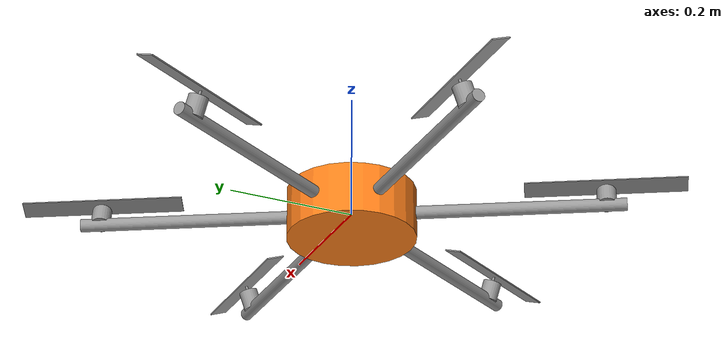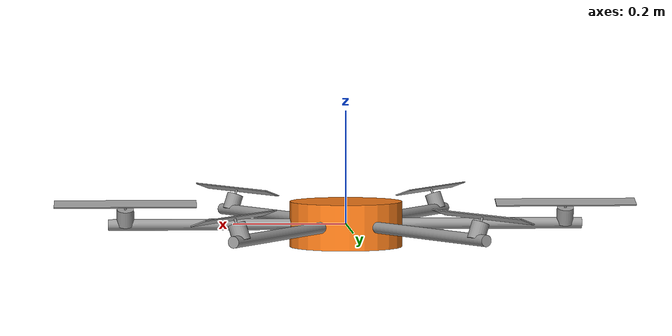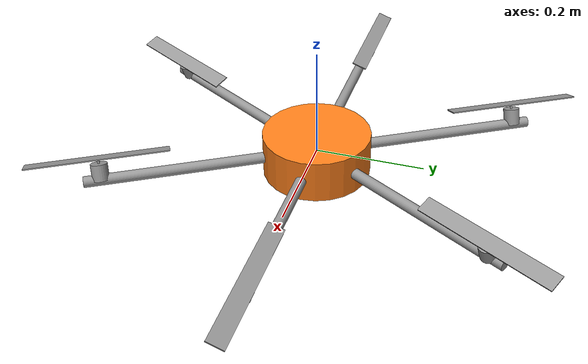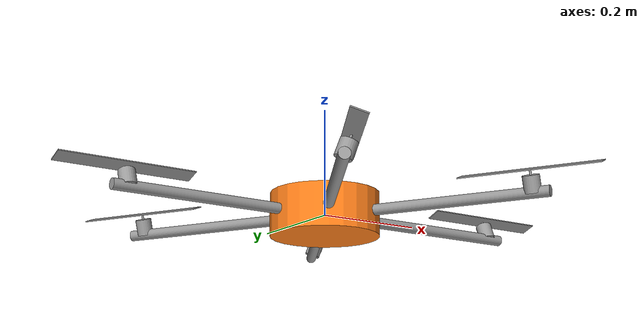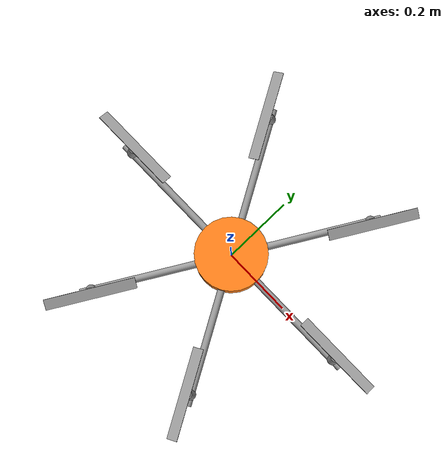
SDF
<?xml version="1.0" ?>
<sdf version="1.5">
<model name="mrsim-tilthex">
    <link name="base">
        <inertial>
            <mass>2.5</mass>
            <inertia>
                <ixx>0.0115</ixx><ixy>0</ixy><ixz>0</ixz>
                <iyy>0.0115</iyy><iyz>0</iyz>
                <izz>0.0194</izz>
            </inertia>
        </inertial>

        <collision name="body">
            <geometry>
                <cylinder><radius>0.1</radius><length>0.08</length></cylinder>
            </geometry>
        </collision>

        <!-- three spheres to make contact stable -->
        <collision name="land_1">
            <pose>0.067 0 0 0 0 0</pose>
            <geometry>
                <sphere><radius>0.04</radius></sphere>
            </geometry>
        </collision>
        <collision name="land_2">
            <pose>-0.06 0.03 0 0 0 0</pose>
            <geometry>
                <sphere><radius>0.04</radius></sphere>
            </geometry>
        </collision>
        <collision name="land_3">
            <pose>-0.05 -0.03 0 0 0 0</pose>
            <geometry>
                <sphere><radius>0.04</radius></sphere>
            </geometry>
        </collision>

        <!-- contact for the arms -->
        <collision name="arm_1">
            <pose>0.21 0 0 0 1.5708 0</pose>
            <geometry>
                <cylinder><radius>0.01</radius><length>0.42</length></cylinder>
            </geometry>
        </collision>
        <collision name="arm_2">
            <pose>0.1050 0.1819 0 0 1.5708 1.0472</pose>
            <geometry>
                <cylinder><radius>0.01</radius><length>0.42</length></cylinder>
            </geometry>
        </collision>
        <collision name="arm_3">
            <pose>-0.1050 0.1819 0 0 1.5708 -1.0472</pose>
            <geometry>
                <cylinder><radius>0.01</radius><length>0.42</length></cylinder>
            </geometry>
        </collision>
        <collision name="arm_4">
            <pose>-0.21 0 0 0 1.5708 0</pose>
            <geometry>
                <cylinder><radius>0.01</radius><length>0.42</length></cylinder>
            </geometry>
        </collision>
        <collision name="arm_5">
            <pose>-0.1050 -0.1819 0 0 1.5708 1.0472</pose>
            <geometry>
                <cylinder><radius>0.01</radius><length>0.42</length></cylinder>
            </geometry>
        </collision>
        <collision name="arm_6">
            <pose>0.1050 -0.1819 0 0 1.5708 -1.0472</pose>
            <geometry>
                <cylinder><radius>0.01</radius><length>0.42</length></cylinder>
            </geometry>
        </collision>

        <visual name="body">
            <geometry>
                <cylinder><radius>0.1</radius><length>0.08</length></cylinder>
            </geometry>
            <material>
                <diffuse>1.0 0.5 0.1 1</diffuse>
            </material>
        </visual>
        <visual name="arm_1">
            <pose>0.21 0 0 0 1.5708 0</pose>
            <geometry>
                <cylinder><radius>0.01</radius><length>0.42</length></cylinder>
            </geometry>
            <material>
                <diffuse>0.6 0.6 0.6 1</diffuse>
            </material>
        </visual>
        <visual name="arm_2">
            <pose>0.1050 0.1819 0 0 1.5708 1.0472</pose>
            <geometry>
                <cylinder><radius>0.01</radius><length>0.42</length></cylinder>
            </geometry>
            <material>
                <diffuse>0.6 0.6 0.6 1</diffuse>
            </material>
        </visual>
        <visual name="arm_3">
            <pose>-0.1050 0.1819 0 0 1.5708 -1.0472</pose>
            <geometry>
                <cylinder><radius>0.01</radius><length>0.42</length></cylinder>
            </geometry>
            <material>
                <diffuse>0.6 0.6 0.6 1</diffuse>
            </material>
        </visual>
        <visual name="arm_4">
            <pose>-0.21 0 0 0 1.5708 0</pose>
            <geometry>
                <cylinder><radius>0.01</radius><length>0.42</length></cylinder>
            </geometry>
            <material>
                <diffuse>0.6 0.6 0.6 1</diffuse>
            </material>
        </visual>
        <visual name="arm_5">
            <pose>-0.1050 -0.1819 0 0 1.5708 1.0472</pose>
            <geometry>
                <cylinder><radius>0.01</radius><length>0.42</length></cylinder>
            </geometry>
            <material>
                <diffuse>0.6 0.6 0.6 1</diffuse>
            </material>
        </visual>
        <visual name="arm_6">
            <pose>0.1050 -0.1819 0 0 1.5708 -1.0472</pose>
            <geometry>
                <cylinder><radius>0.01</radius><length>0.42</length></cylinder>
            </geometry>
            <material>
                <diffuse>0.6 0.6 0.6 1</diffuse>
            </material>
        </visual>
    </link>

    <include>
        <uri>model://mrsim-rotor</uri>
        <name>rotor_1_link</name>
        <pose>0.39 0 0 -0.3491 0 0</pose>
    </include>
    <joint name="rotor_1_joint" type="revolute">
        <parent>base</parent>
        <child>rotor_1_link::propeller</child>
        <axis><xyz>0 0 1</xyz></axis>
    </joint>

    <include>
        <uri>model://mrsim-rotor</uri>
        <name>rotor_2_link</name>
        <pose>0.195 0.3377 0 0.3491 0 1.0472</pose>
    </include>
    <joint name="rotor_2_joint" type="revolute">
        <parent>base</parent>
        <child>rotor_2_link::propeller</child>
        <axis><xyz>0 0 1</xyz></axis>
    </joint>

    <include>
        <uri>model://mrsim-rotor</uri>
        <name>rotor_3_link</name>
        <pose>-0.195 0.3377 0 -0.3491 0 2.0944</pose>
    </include>
    <joint name="rotor_3_joint" type="revolute">
        <parent>base</parent>
        <child>rotor_3_link::propeller</child>
        <axis><xyz>0 0 1</xyz></axis>
    </joint>

    <include>
        <uri>model://mrsim-rotor</uri>
        <name>rotor_4_link</name>
        <pose>-0.39 0 0 -0.3491 0 0</pose>
    </include>
    <joint name="rotor_4_joint" type="revolute">
        <parent>base</parent>
        <child>rotor_4_link::propeller</child>
        <axis><xyz>0 0 1</xyz></axis>
    </joint>

    <include>
        <uri>model://mrsim-rotor</uri>
        <name>rotor_5_link</name>
        <pose>-0.195 -0.3377 0 -0.3491 0 -2.0944</pose>
    </include>
    <joint name="rotor_5_joint" type="revolute">
        <parent>base</parent>
        <child>rotor_5_link::propeller</child>
        <axis><xyz>0 0 1</xyz></axis>
    </joint>

    <include>
        <uri>model://mrsim-rotor</uri>
        <name>rotor_6_link</name>
        <pose>0.195 -0.3377 0 0.3491 0 -1.0472</pose>
    </include>
    <joint name="rotor_6_joint" type="revolute">
        <parent>base</parent>
        <child>rotor_6_link::propeller</child>
        <axis><xyz>0 0 1</xyz></axis>
    </joint>

    <plugin name="mrsim" filename="mrsim-gazebo.so">
        <link>base</link>
        <rotors>
        <noise>0.03</noise>
            <cf>11.4e-4</cf>
            <ct>2.4e-5</ct>
            <rotor><joint spin="cw">rotor_1_joint</joint></rotor>
            <rotor><joint spin="ccw">rotor_2_joint</joint></rotor>
            <rotor><joint spin="cw">rotor_3_joint</joint></rotor>
            <rotor><joint spin="ccw">rotor_4_joint</joint></rotor>
            <rotor><joint spin="cw">rotor_5_joint</joint></rotor>
            <rotor><joint spin="ccw">rotor_6_joint</joint></rotor>
        </rotors>
    </plugin>
</model>
</sdf>

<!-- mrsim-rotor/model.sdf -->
<sdf version="1.5">
  <model name="mrsim-rotor">
    <link name="propeller">
      <inertial>
        <mass>0.07</mass>
        <inertia>
          <ixx>4e-5</ixx><ixy>0</ixy><ixz>0</ixz>
          <iyy>4e-5</iyy><iyz>0</iyz>
          <izz>8e-5</izz>
        </inertia>
      </inertial>

      <collision name="collision">
        <pose>0 0 0.04 0 0 0</pose>
        <geometry>
          <cylinder><radius>0.127</radius><length>0.002</length></cylinder>
        </geometry>
      </collision>

      <visual name="motor">
        <pose>0 0 0.015 0 0 0</pose>
        <geometry>
          <cylinder><radius>0.015</radius><length>0.03</length></cylinder>
        </geometry>
        <material>
          <diffuse>0.6 0.6 0.6 1</diffuse>
        </material>
      </visual>

      <visual name="axle">
        <pose>0 0 0.035 0 0 0</pose>
        <geometry>
          <cylinder><radius>0.002</radius><length>0.01</length></cylinder>
        </geometry>
        <material>
          <diffuse>0.6 0.6 0.6 1</diffuse>
        </material>
      </visual>

      <visual name="blade">
        <pose>0 0 0.04 0 0 0</pose>
        <geometry>
          <box><size>0.25 0.03 0.002</size></box>
        </geometry>
        <material>
          <diffuse>0.6 0.6 0.6 1</diffuse>
        </material>
      </visual>
    </link>
  </model>
</sdf>
